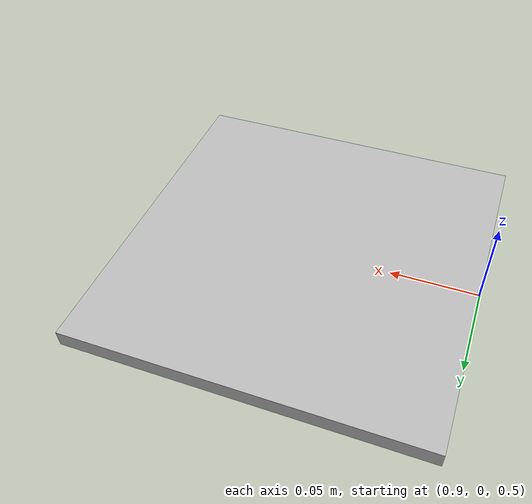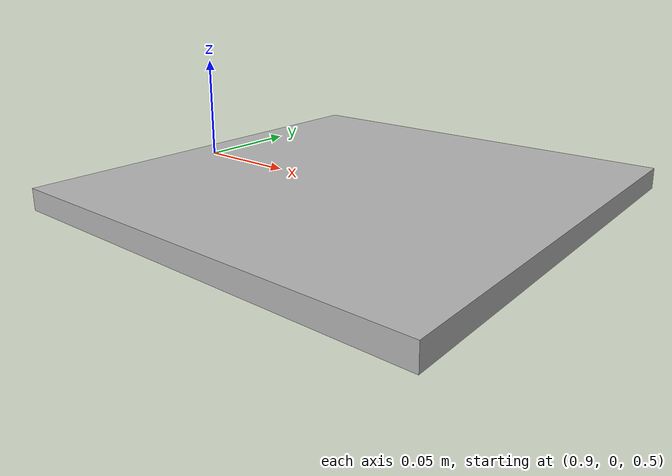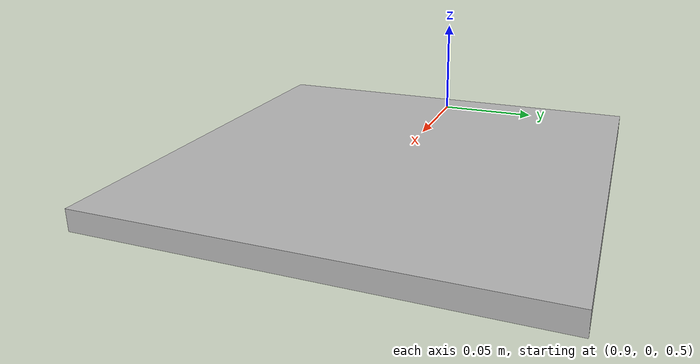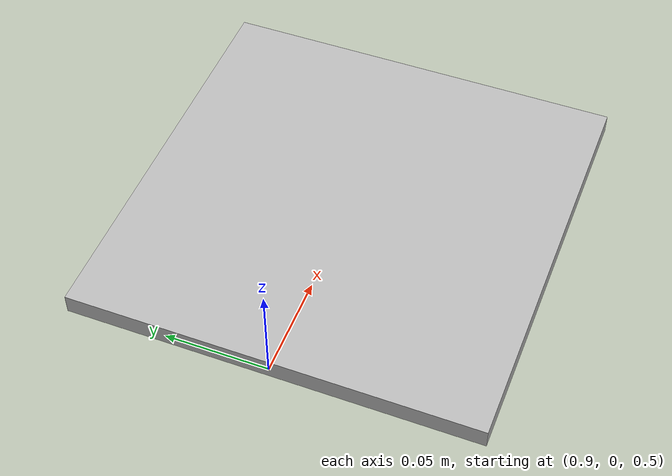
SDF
<?xml version="1.0" ?>
<sdf version="1.6">
  <model name="apriltag_marker">
    <static>true</static>
    <link name="link">
      <pose>1 0 0.5 0 0 0</pose>
      <visual name="visual">
        <geometry>
          <box>
            <size>0.2 0.2 0.01</size>
          </box>
        </geometry>
        <material>
          <script>
            <uri>model://apriltag_marker/materials/scripts</uri>
            <uri>model://apriltag_marker/materials/textures</uri>
            <name>tag36_11_00000_material</name>
          </script>
        </material>
      </visual>
    </link>
  </model>
</sdf>
